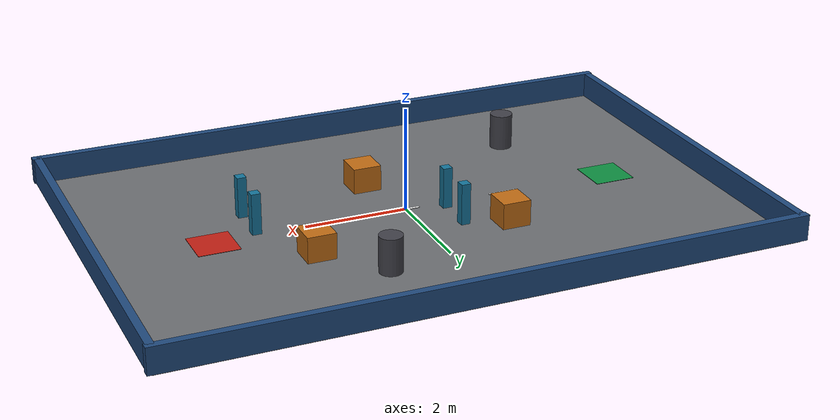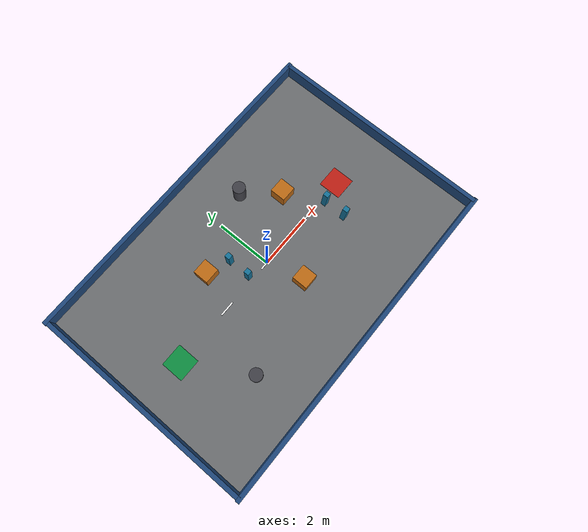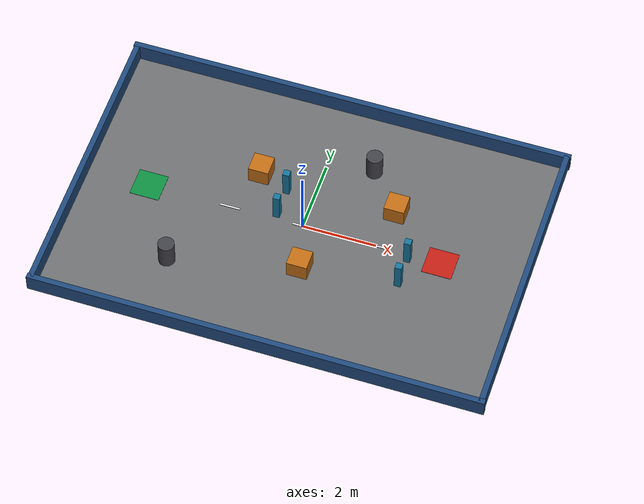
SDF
<?xml version="1.0" ?>
<sdf version="1.7">
  <world name="turtlebot3_training_arena">
    <physics name="default_physics" default="0" type="ode">
      <max_step_size>0.001</max_step_size>
      <real_time_factor>1.0</real_time_factor>
      <real_time_update_rate>1000</real_time_update_rate>
    </physics>

    <scene>
      <ambient>0.55 0.58 0.62 1</ambient>
      <background>0.65 0.72 0.80 1</background>
      <shadows>true</shadows>
    </scene>

    <!-- Initial Gazebo GUI camera -->
    <gui fullscreen="0">
      <camera name="user_camera">
        <pose>-9 -7 6 0 0.35 0.9</pose>
      </camera>
    </gui>

    <!-- GPS origin (matches gps_waypoint_follower.cpp: Moscow) -->
    <spherical_coordinates>
      <surface_model>EARTH_WGS84</surface_model>
      <latitude_deg>55.751244</latitude_deg>
      <longitude_deg>37.618423</longitude_deg>
      <elevation>0</elevation>
      <heading_deg>0</heading_deg>
    </spherical_coordinates>

    <light name="sun" type="directional">
      <cast_shadows>true</cast_shadows>
      <pose>0 0 10 0 0 0</pose>
      <diffuse>0.8 0.8 0.8 1</diffuse>
      <specular>0.2 0.2 0.2 1</specular>
      <attenuation>
        <range>1000</range>
        <constant>0.9</constant>
        <linear>0.01</linear>
        <quadratic>0.001</quadratic>
      </attenuation>
      <direction>-0.4 0.25 -0.9</direction>
    </light>

    <!-- Soft fill light for warmer shading -->
    <light name="fill_light" type="directional">
      <cast_shadows>false</cast_shadows>
      <pose>0 0 8 0 0 0</pose>
      <diffuse>0.35 0.40 0.55 1</diffuse>
      <specular>0.05 0.05 0.05 1</specular>
      <direction>0.3 -0.4 -0.9</direction>
    </light>

    <model name="arena">
      <static>true</static>

      <link name="floor">
        <pose>0 0 -0.025 0 0 0</pose>
        <collision name="floor_collision">
          <geometry><box><size>12.0 8.0 0.05</size></box></geometry>
          <surface>
            <friction><ode><mu>1.0</mu><mu2>1.0</mu2></ode></friction>
          </surface>
        </collision>
        <visual name="floor_visual">
          <geometry><box><size>12.0 8.0 0.05</size></box></geometry>
          <material>
            <ambient>0.42 0.43 0.44 1</ambient>
            <diffuse>0.42 0.43 0.44 1</diffuse>
          </material>
        </visual>
      </link>

      <!-- Outer boundary -->
      <link name="north_wall">
        <pose>0 4.0 0.25 0 0 0</pose>
        <collision name="collision"><geometry><box><size>12.2 0.15 0.5</size></box></geometry></collision>
        <visual name="visual"><geometry><box><size>12.2 0.15 0.5</size></box></geometry>
          <material><ambient>0.12 0.28 0.48 1</ambient><diffuse>0.12 0.28 0.48 1</diffuse></material>
        </visual>
      </link>
      <link name="south_wall">
        <pose>0 -4.0 0.25 0 0 0</pose>
        <collision name="collision"><geometry><box><size>12.2 0.15 0.5</size></box></geometry></collision>
        <visual name="visual"><geometry><box><size>12.2 0.15 0.5</size></box></geometry>
          <material><ambient>0.12 0.28 0.48 1</ambient><diffuse>0.12 0.28 0.48 1</diffuse></material>
        </visual>
      </link>
      <link name="east_wall">
        <pose>6.0 0 0.25 0 0 0</pose>
        <collision name="collision"><geometry><box><size>0.15 8.0 0.5</size></box></geometry></collision>
        <visual name="visual"><geometry><box><size>0.15 8.0 0.5</size></box></geometry>
          <material><ambient>0.12 0.28 0.48 1</ambient><diffuse>0.12 0.28 0.48 1</diffuse></material>
        </visual>
      </link>
      <link name="west_wall">
        <pose>-6.0 0 0.25 0 0 0</pose>
        <collision name="collision"><geometry><box><size>0.15 8.0 0.5</size></box></geometry></collision>
        <visual name="visual"><geometry><box><size>0.15 8.0 0.5</size></box></geometry>
          <material><ambient>0.12 0.28 0.48 1</ambient><diffuse>0.12 0.28 0.48 1</diffuse></material>
        </visual>
      </link>

      <!-- Start and target pads -->
      <link name="start_pad">
        <pose>-4.25 0 0.004 0 0 0</pose>
        <visual name="visual"><geometry><box><size>0.8 0.8 0.008</size></box></geometry>
          <material><ambient>0.05 0.55 0.25 1</ambient><diffuse>0.05 0.55 0.25 1</diffuse></material>
        </visual>
      </link>
      <link name="goal_pad">
        <pose>3.75 0 0.004 0 0 0</pose>
        <visual name="visual"><geometry><box><size>0.8 0.8 0.008</size></box></geometry>
          <material><ambient>0.75 0.12 0.08 1</ambient><diffuse>0.75 0.12 0.08 1</diffuse></material>
        </visual>
      </link>

      <!-- Center lane markers -->
      <link name="lane_marker_1"><pose>-2.0 0 0.006 0 0 0</pose>
        <visual name="visual"><geometry><box><size>0.55 0.05 0.012</size></box></geometry>
          <material><ambient>1 1 1 1</ambient><diffuse>1 1 1 1</diffuse></material>
        </visual>
      </link>
      <link name="lane_marker_2"><pose>0.0 0 0.006 0 0 0</pose>
        <visual name="visual"><geometry><box><size>0.55 0.05 0.012</size></box></geometry>
          <material><ambient>1 1 1 1</ambient><diffuse>1 1 1 1</diffuse></material>
        </visual>
      </link>
      <link name="lane_marker_3"><pose>2.0 0 0.006 0 0 0</pose>
        <visual name="visual"><geometry><box><size>0.55 0.05 0.012</size></box></geometry>
          <material><ambient>1 1 1 1</ambient><diffuse>1 1 1 1</diffuse></material>
        </visual>
      </link>

      <!-- Offset obstacles -->
      <link name="block_1">
        <pose>-1.55 1.25 0.25 0 0 0</pose>
        <collision name="collision"><geometry><box><size>0.55 0.55 0.5</size></box></geometry></collision>
        <visual name="visual"><geometry><box><size>0.55 0.55 0.5</size></box></geometry>
          <material><ambient>0.75 0.42 0.08 1</ambient><diffuse>0.75 0.42 0.08 1</diffuse></material>
        </visual>
      </link>
      <link name="block_2">
        <pose>0.35 -1.30 0.25 0 0 0</pose>
        <collision name="collision"><geometry><box><size>0.55 0.55 0.5</size></box></geometry></collision>
        <visual name="visual"><geometry><box><size>0.55 0.55 0.5</size></box></geometry>
          <material><ambient>0.75 0.42 0.08 1</ambient><diffuse>0.75 0.42 0.08 1</diffuse></material>
        </visual>
      </link>
      <link name="block_3">
        <pose>2.20 1.15 0.25 0 0 0</pose>
        <collision name="collision"><geometry><box><size>0.55 0.55 0.5</size></box></geometry></collision>
        <visual name="visual"><geometry><box><size>0.55 0.55 0.5</size></box></geometry>
          <material><ambient>0.75 0.42 0.08 1</ambient><diffuse>0.75 0.42 0.08 1</diffuse></material>
        </visual>
      </link>

      <!-- Cylinders -->
      <link name="pillar_1">
        <pose>-3.0 -2.1 0.35 0 0 0</pose>
        <collision name="collision"><geometry><cylinder><radius>0.22</radius><length>0.7</length></cylinder></geometry></collision>
        <visual name="visual"><geometry><cylinder><radius>0.22</radius><length>0.7</length></cylinder></geometry>
          <material><ambient>0.25 0.25 0.28 1</ambient><diffuse>0.25 0.25 0.28 1</diffuse></material>
        </visual>
      </link>
      <link name="pillar_2">
        <pose>1.25 2.25 0.35 0 0 0</pose>
        <collision name="collision"><geometry><cylinder><radius>0.22</radius><length>0.7</length></cylinder></geometry></collision>
        <visual name="visual"><geometry><cylinder><radius>0.22</radius><length>0.7</length></cylinder></geometry>
          <material><ambient>0.25 0.25 0.28 1</ambient><diffuse>0.25 0.25 0.28 1</diffuse></material>
        </visual>
      </link>

      <!-- Gates -->
      <link name="gate_left_1"><pose>-0.75 0.95 0.4 0 0 0</pose>
        <collision name="collision"><geometry><box><size>0.18 0.18 0.8</size></box></geometry></collision>
        <visual name="visual"><geometry><box><size>0.18 0.18 0.8</size></box></geometry>
          <material><ambient>0.08 0.45 0.60 1</ambient><diffuse>0.08 0.45 0.60 1</diffuse></material>
        </visual>
      </link>
      <link name="gate_right_1"><pose>-0.75 0.15 0.4 0 0 0</pose>
        <collision name="collision"><geometry><box><size>0.18 0.18 0.8</size></box></geometry></collision>
        <visual name="visual"><geometry><box><size>0.18 0.18 0.8</size></box></geometry>
          <material><ambient>0.08 0.45 0.60 1</ambient><diffuse>0.08 0.45 0.60 1</diffuse></material>
        </visual>
      </link>
      <link name="gate_left_2"><pose>2.9 -0.15 0.4 0 0 0</pose>
        <collision name="collision"><geometry><box><size>0.18 0.18 0.8</size></box></geometry></collision>
        <visual name="visual"><geometry><box><size>0.18 0.18 0.8</size></box></geometry>
          <material><ambient>0.08 0.45 0.60 1</ambient><diffuse>0.08 0.45 0.60 1</diffuse></material>
        </visual>
      </link>
      <link name="gate_right_2"><pose>2.9 -0.95 0.4 0 0 0</pose>
        <collision name="collision"><geometry><box><size>0.18 0.18 0.8</size></box></geometry></collision>
        <visual name="visual"><geometry><box><size>0.18 0.18 0.8</size></box></geometry>
          <material><ambient>0.08 0.45 0.60 1</ambient><diffuse>0.08 0.45 0.60 1</diffuse></material>
        </visual>
      </link>
    </model>
  </world>
</sdf>
